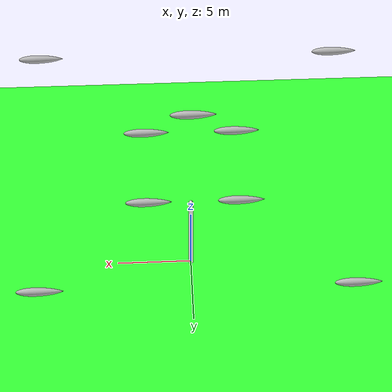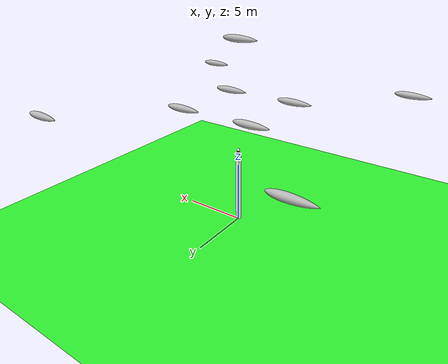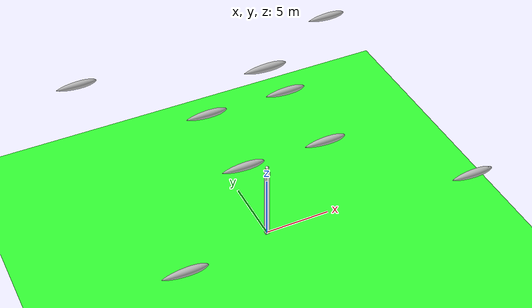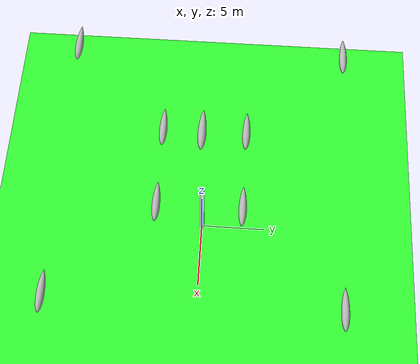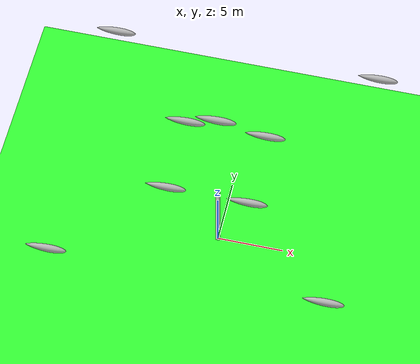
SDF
<sdf version="1.9">
 <world name="vision_radar_track">
  <physics type="ode">
   <max_step_size>0.001</max_step_size>
   <real_time_factor>1.0</real_time_factor>
   <real_time_update_rate>250</real_time_update_rate>
  </physics>
  <plugin name="gz::sim::systems::Physics" filename="gz-sim-physics-system"/>
  <plugin name="gz::sim::systems::UserCommands" filename="gz-sim-user-commands-system"/>
  <plugin name="gz::sim::systems::SceneBroadcaster" filename="gz-sim-scene-broadcaster-system"/>
  <plugin name="gz::sim::systems::Contact" filename="gz-sim-contact-system"/>
  <plugin name="gz::sim::systems::Imu" filename="gz-sim-imu-system"/>
  <plugin name="gz::sim::systems::AirPressure" filename="gz-sim-air-pressure-system"/>
  <plugin name="gz::sim::systems::AirSpeed" filename="gz-sim-air-speed-system"/>
  <plugin name="gz::sim::systems::ApplyLinkWrench" filename="gz-sim-apply-link-wrench-system"/>
  <plugin name="gz::sim::systems::NavSat" filename="gz-sim-navsat-system"/>
  <plugin name="gz::sim::systems::Sensors" filename="gz-sim-sensors-system">
   <render_engine>ogre2</render_engine>
  </plugin>
  <gravity>0 0 -9.8</gravity>
  <magnetic_field>6e-06 2.3e-05 -4.2e-05</magnetic_field>
  <atmosphere type="adiabatic"/>
  <scene>
   <grid>false</grid>
   <ambient>0.4 0.4 0.4 1</ambient>
   <background>0.7 0.7 0.7 1</background>
   <shadows>true</shadows>
  </scene>
  <model name="ground_plane">
   <static>true</static>
   <link name="link">
    <collision name="collision">
     <geometry><plane><normal>0 0 1</normal><size>100000 100000</size></plane></geometry>
    </collision>
    <visual name="visual">
     <geometry><plane><normal>0 0 1</normal><size>100000 100000</size></plane></geometry>
     <material>
      <ambient>0.2 1 0.2 1</ambient>
      <diffuse>0.2 1 0.2 1</diffuse>
      <specular>0.1 0.1 0.1 1</specular>
     </material>
    </visual>
    <inertial>
     <mass>1</mass>
     <inertia><ixx>1</ixx><ixy>0</ixy><ixz>0</ixz><iyy>1</iyy><iyz>0</iyz><izz>1</izz></inertia>
    </inertial>
   </link>
  </model>
  <light name="sunUTC" type="directional">
   <pose>0 0 500 0 -0 0</pose>
   <intensity>1</intensity>
   <direction>0.001 0.625 -0.78</direction>
   <diffuse>0.904 0.904 0.904 1</diffuse>
   <specular>0.271 0.271 0.271 1</specular>
   <attenuation><range>2000</range><linear>0</linear><constant>1</constant><quadratic>0</quadratic></attenuation>
   <spot><inner_angle>0</inner_angle><outer_angle>0</outer_angle><falloff>0</falloff></spot>
  </light>
  <spherical_coordinates>
   <surface_model>EARTH_WGS84</surface_model>
   <world_frame_orientation>ENU</world_frame_orientation>
   <latitude_deg>47.397971057728974</latitude_deg>
   <longitude_deg>8.546163739800146</longitude_deg>
   <elevation>0</elevation>
  </spherical_coordinates>
  <model name="ptz_on_bracket">
   <link name="bracket_link">
    <pose>0 0 3 0 0 0</pose>
    <visual name="bracket_visual">
     <geometry><box><size>0.3 0.3 6</size></box></geometry>
     <material><ambient>1 1 1 1</ambient><diffuse>1 1 1 1</diffuse><specular>0.5 0.5 0.5 1</specular></material>
    </visual>
    <collision name="base_collision"><geometry><box><size>0.5 0.5 6</size></box></geometry></collision>
   </link>
   <joint name="bracket_fixed_joint" type="fixed"><parent>world</parent><child>bracket_link</child></joint>
   <include merge="true"><uri>model://ptz_cam</uri><pose>0 0 6 0 0 0</pose></include>
   <joint name="ptz_fixed_joint" type="fixed">
    <parent>bracket_link</parent>
    <child>ptz_base_link</child>
    <pose>0 0 3 0 0 0</pose>
   </joint>
  </model>
  <model name="airship_1">
   <pose>10 10 0 0 0 0</pose>
   <static>true</static>
   <include merge="true"><uri>model://airship</uri></include>
  </model>
  <model name="airship_2">
   <pose>10 -10 0 0 0 0</pose>
   <static>true</static>
   <include merge="true"><uri>model://airship</uri></include>
  </model>
  <model name="airship_3">
   <pose>-10 -10 0 0 0 0</pose>
   <static>true</static>
   <include merge="true"><uri>model://airship</uri></include>
  </model>
  <model name="airship_4">
   <pose>-10 10 0 0 0 0</pose>
   <static>true</static>
   <include merge="true"><uri>model://airship</uri></include>
  </model>
  <model name="airship_5">
   <pose>3 3 0 0 0 0</pose>
   <static>true</static>
   <include merge="true"><uri>model://airship</uri></include>
  </model>
  <model name="airship_6">
   <pose>3 -3 0 0 0 0</pose>
   <static>true</static>
   <include merge="true"><uri>model://airship</uri></include>
  </model>
  <model name="airship_7">
   <pose>-3 -3 0 0 0 0</pose>
   <static>true</static>
   <include merge="true"><uri>model://airship</uri></include>
  </model>
  <model name="airship_8">
   <pose>-3 3 0 0 0 0</pose>
   <static>true</static>
   <include merge="true"><uri>model://airship</uri></include>
  </model>
  <model name="airship_9">
   <pose>-0 0 5 0 0 0</pose>
   <static>true</static>
   <include merge="true"><uri>model://airship</uri></include>
  </model>
 </world>
</sdf>

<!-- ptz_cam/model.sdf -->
<sdf version="1.10">
  <model name="ptz_cam">
    <self_collide>false</self_collide>
    <static>false</static>

    <link name="ptz_base_link">
      <pose>0 0 0.05 0 0 0</pose>
      <inertial>
        <mass>1.0</mass>
        <inertia>
          <ixx>0.00563</ixx>
          <ixy>0</ixy>
          <ixz>0</ixz>
          <iyy>0.00563</iyy>
          <iyz>0</iyz>
          <izz>0.0096</izz>
        </inertia>
      </inertial>
      <visual name="base_visual">
        <geometry>
          <box>
            <size>0.24 0.24 0.1</size>
          </box>
        </geometry>
        <material>
          <ambient>1 1 1 1</ambient>
          <diffuse>1 1 1 1</diffuse>
          <specular>0.5 0.5 0.5 1</specular>
        </material>
      </visual>
      <collision name="base_collision">
        <geometry>
          <box>
            <size>0.24 0.24 0.1</size>
          </box>
        </geometry>
      </collision>
    </link>

    <link name="ptz_yaw_link">
      <pose>0 0 0.13 0 0 0</pose>
      <inertial>
        <mass>0.3</mass>
        <inertia>
          <ixx>0.00139</ixx>
          <ixy>0</ixy>
          <ixz>0</ixz>
          <iyy>0.00139</iyy>
          <iyz>0</iyz>
          <izz>0.0015</izz>
        </inertia>
      </inertial>
      <visual name="yaw_visual">
        <geometry>
          <cylinder>
            <radius>0.1</radius>
            <length>0.16</length>
          </cylinder>
        </geometry>
        <material>
          <ambient>1 0 0 1</ambient>
          <diffuse>1 0 0 1</diffuse>
          <specular>0.5 0.5 0.5 1</specular>
        </material>
      </visual>
      <collision name="yaw_collision">
        <geometry>
          <cylinder>
            <radius>0.1</radius>
            <length>0.16</length>
          </cylinder>
        </geometry>
      </collision>
    </link>

    <joint name="ptz_yaw_joint" type="revolute">
      <parent>ptz_base_link</parent>
      <child>ptz_yaw_link</child>
      <axis>
        <xyz>0 0 1</xyz>
        <limit>
          <lower>-1e16</lower>
          <upper>1e16</upper>
          <effort>50</effort>
          <velocity>-1</velocity>
        </limit>
        <dynamics>
          <damping>0.05</damping>
        </dynamics>
      </axis>
      <physics>
        <ode>
          <implicit_spring_damper>1</implicit_spring_damper>
          <limit>
            <cfm>0.1</cfm>
            <erp>0.2</erp>
          </limit>
        </ode>
      </physics>
    </joint>

    <link name="ptz_pitch_link">
      <pose>0 0 0.31 0 0 0</pose>
      <inertial>
        <mass>0.5</mass>
        <inertia>
          <ixx>0.00288</ixx>
          <ixy>0</ixy>
          <ixz>0</ixz>
          <iyy>0.00288</iyy>
          <iyz>0</iyz>
          <izz>0.00288</izz>
        </inertia>
      </inertial>
      <visual name="pitch_visual">
        <geometry>
          <sphere>
            <radius>0.12</radius>
          </sphere>
        </geometry>
        <material>
          <ambient>1 1 1 1</ambient>
          <diffuse>1 1 1 1</diffuse>
          <specular>0.5 0.5 0.5 1</specular>
        </material>
      </visual>
      <collision name="pitch_collision">
        <geometry>
          <sphere>
            <radius>0.12</radius>
          </sphere>
        </geometry>
      </collision>
    </link>

    <joint name="ptz_pitch_joint" type="revolute">
      <parent>ptz_yaw_link</parent>
      <child>ptz_pitch_link</child>
      <axis>
        <xyz>0 1 0</xyz>
        <limit>
          <lower>-1.5708</lower>
          <upper>0.436332</upper>
          <effort>50</effort>
          <velocity>1.0</velocity>
        </limit>
        <dynamics>
          <damping>0.1</damping>
        </dynamics>
      </axis>
      <physics>
        <ode>
          <implicit_spring_damper>1</implicit_spring_damper>
          <limit>
            <cfm>0.1</cfm>
            <erp>0.2</erp>
          </limit>
        </ode>
      </physics>
    </joint>

    <link name="ptz_camera_link">
      <pose>0.12 0 0.31 0 1.5708 0</pose>
      <inertial>
        <mass>0.01</mass>
        <inertia>
          <ixx>2.3333e-06</ixx>
          <ixy>0</ixy>
          <ixz>0</ixz>
          <iyy>2.3333e-06</iyy>
          <iyz>0</iyz>
          <izz>2.0e-06</izz>
        </inertia>
      </inertial>
      <visual name="camera_visual">
        <geometry>
          <cylinder>
            <radius>0.02</radius>
            <length>0.04</length>
          </cylinder>
        </geometry>
        <material>
          <ambient>0.2 0.2 0.2 1</ambient>
          <diffuse>0.2 0.2 0.2 1</diffuse>
          <specular>0.5 0.5 0.5 1</specular>
        </material>
      </visual>
      <collision name="mount_collision">
        <geometry>
          <cylinder>
            <radius>0.02</radius>
            <length>0.04</length>
          </cylinder>
        </geometry>
      </collision>

      <sensor name="camera_imu" type="imu">
        <always_on>1</always_on>
        <update_rate>250</update_rate>
        <pose>0.12 0 0.31 0 1.5708 0</pose>
        <imu>
          <angular_velocity>
            <x>
              <noise type="gaussian">
                <mean>0</mean>
                <stddev>0.00018665</stddev>
                <dynamic_bias_stddev>3.8785e-05</dynamic_bias_stddev>
                <dynamic_bias_correlation_time>1000</dynamic_bias_correlation_time>
              </noise>
            </x>
            <y>
              <noise type="gaussian">
                <mean>0</mean>
                <stddev>0.00018665</stddev>
                <dynamic_bias_stddev>3.8785e-05</dynamic_bias_stddev>
                <dynamic_bias_correlation_time>1000</dynamic_bias_correlation_time>
              </noise>
            </y>
            <z>
              <noise type="gaussian">
                <mean>0</mean>
                <stddev>0.00018665</stddev>
                <dynamic_bias_stddev>3.8785e-05</dynamic_bias_stddev>
                <dynamic_bias_correlation_time>1000</dynamic_bias_correlation_time>
              </noise>
            </z>
          </angular_velocity>
          <linear_acceleration>
            <x>
              <noise type="gaussian">
                <mean>0</mean>
                <stddev>0.00186</stddev>
                <dynamic_bias_stddev>0.006</dynamic_bias_stddev>
                <dynamic_bias_correlation_time>300</dynamic_bias_correlation_time>
              </noise>
            </x>
            <y>
              <noise type="gaussian">
                <mean>0</mean>
                <stddev>0.00186</stddev>
                <dynamic_bias_stddev>0.006</dynamic_bias_stddev>
                <dynamic_bias_correlation_time>300</dynamic_bias_correlation_time>
              </noise>
            </y>
            <z>
              <noise type="gaussian">
                <mean>0</mean>
                <stddev>0.00186</stddev>
                <dynamic_bias_stddev>0.006</dynamic_bias_stddev>
                <dynamic_bias_correlation_time>300</dynamic_bias_correlation_time>
              </noise>
            </z>
          </linear_acceleration>
        </imu>
        <topic>ptz_cam/camera_imu</topic>
      </sensor>

      <sensor name="camera" type="camera">
        <pose>0.14 0 0.31 0 -1.5708 0</pose>
        <camera>
          <horizontal_fov>1.74</horizontal_fov>
          <image>
            <width>1280</width>
            <height>720</height>
            <format>R8G8B8</format>
          </image>
          <clip>
            <near>0.1</near>
            <far>1000</far>
          </clip>
        </camera>
        <always_on>1</always_on>
        <update_rate>30</update_rate>
        <visualize>true</visualize>
        <topic>ptz_cam/camera</topic>
      </sensor>
    </link>

    <joint name="mount_joint" type="fixed">
      <parent>ptz_pitch_link</parent>
      <child>ptz_camera_link</child>
    </joint>

     <!-- Plugins for joint control -->
    <plugin filename="gz-sim-joint-position-controller-system"
            name="gz::sim::systems::JointPositionController">
      <joint_name>ptz_yaw_joint</joint_name>
      <sub_topic>command/ptz_yaw</sub_topic>
      <p_gain>0.3</p_gain>
      <i_gain>0.012</i_gain>
      <d_gain>0.015</d_gain>
      <i_max>0</i_max>
      <i_min>0</i_min>
      <cmd_max>0.3</cmd_max>
      <cmd_min>-0.3</cmd_min>
    </plugin>

    <plugin filename="gz-sim-joint-position-controller-system"
            name="gz::sim::systems::JointPositionController">
      <joint_name>ptz_pitch_joint</joint_name>
      <sub_topic>command/ptz_pitch</sub_topic>
      <p_gain>0.8</p_gain>
      <i_gain>0.012</i_gain>
      <d_gain>0.015</d_gain>
      <i_max>0</i_max>
      <i_min>0</i_min>
      <cmd_max>1</cmd_max>
      <cmd_min>-1</cmd_min>
    </plugin>

  </model>
</sdf>

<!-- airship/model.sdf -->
<sdf version="1.6">
  <model name="hull">
    <pose>0 0 10 0 0 0</pose>
    <link name="hull_link">
      <inertial>
        <pose>0.0 0 0 0 0 0</pose>
        <mass>0.5</mass>
        <inertia>
          <ixx>0.0069861272</ixx>
          <ixy>0</ixy>
          <ixz>0</ixz>
          <iyy>0.1292433532</iyy>
          <iyz>0</iyz>
          <izz>0.1292433532</izz>
        </inertia>
        <fluid_added_mass>

          <xx>0.0256621271421697</xx>
          <xy>0.0</xy>
          <xz>0.0</xz>
          <xp>0.0</xp>
          <xq>0.0</xq>
          <xr>0.0</xr>

          <yy>0.538639694339695</yy>
          <yz>0.0</yz>
          <yp>0.0</yp>
          <yq>0.0</yq>
          <yr>0.189291512412098</yr>

          <zz>0.538639694339695</zz>
          <zp>0.0</zp>
          <zq>-0.189291512412098</zq>
          <zr>0.0</zr>

          <pp>0.000160094457776136</pp>
          <pq>0.0</pq>
          <pr>0.0</pr>

          <qq>2.02957381640185</qq>
          <qr>0.0</qr>

          <rr>2.02957381640185</rr>

        </fluid_added_mass>
      </inertial>

        <visual name='hull_visual'>
          <pose> -1.6647160021415952 0 0 0 3.141592653589793 0</pose>
          <geometry>
            <mesh>
              <scale>0.001 0.001 0.001</scale>
              <uri>model://airship/meshes/envelope.stl</uri>
            </mesh>
          </geometry>
        </visual>

        <collision name='hull_collision'>
          <geometry>
            <box>
              <size>10 0.45 0.1</size>
            </box>
          </geometry>
        </collision>
    </link>
    <plugin
      filename="gz-sim-lighter_than_air_dynamics-system"
      name="gz::sim::systems::LighterThanAirDynamics">
      <link_name>hull_link</link_name>
      <air_density>1.2754</air_density>
      <force_inviscid_coeff>-0.06425096870274437</force_inviscid_coeff>
      <force_viscous_coeff>0.07237374316691345</force_viscous_coeff>
      <moment_inviscid_coeff>0.08506449448628849</moment_inviscid_coeff>
      <moment_viscous_coeff>-0.0941254292661463</moment_viscous_coeff>
      <axial_drag_coeff>0.1</axial_drag_coeff>
      <eps_v>2.4389047</eps_v>
    </plugin>

  </model>
</sdf>
